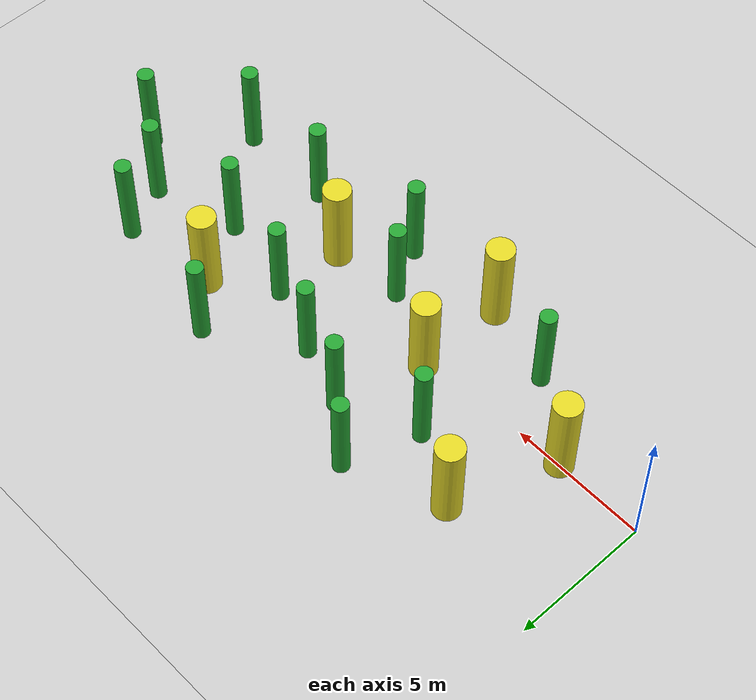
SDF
<sdf version="1.6">
 <world name="default">
  <physics name="default_physics" default="0" type="ode">
   <ode>
    <solver>
     <type>quick</type>
     <iters>150</iters>
     <sor>1.3</sor>
     <use_dynamic_moi_rescaling>0</use_dynamic_moi_rescaling>
    </solver>
    <constraints>
     <cfm>1e-05</cfm>
     <erp>0.2</erp>
     <contact_max_correcting_vel>1000</contact_max_correcting_vel>
     <contact_surface_layer>0.01</contact_surface_layer>
    </constraints>
   </ode>
   <max_step_size>0.004</max_step_size>
   <real_time_factor>1000</real_time_factor>
   <real_time_update_rate>250</real_time_update_rate>
  </physics>
  <light name="sun" type="directional">
   <pose>0 0 10 0 -0 0</pose>
   <diffuse>0.8 0.8 0.8 1</diffuse>
   <specular>0.2 0.2 0.2 1</specular>
   <attenuation>
    <range>1000</range>
    <constant>0.9</constant>
    <linear>0.01</linear>
    <quadratic>0.001</quadratic>
   </attenuation>
   <direction>-0.5 0.1 -0.9</direction>
  </light>
  <model name="ground_plane">
   <static>1</static>
   <link name="link">
    <collision name="collision">
     <geometry><plane><normal>0 0 1</normal><size>100 100</size></plane></geometry>
     <surface><friction><ode><mu>100</mu><mu2>50</mu2></ode></friction></surface>
    </collision>
    <visual name="visual">
     <cast_shadows>0</cast_shadows>
     <geometry><plane><normal>0 0 1</normal><size>100 100</size></plane></geometry>
     <material>
      <script><uri>file://media/materials/scripts/gazebo.material</uri><name>Gazebo/Grey</name></script>
     </material>
    </visual>
    <velocity_decay><linear>0</linear><angular>0</angular></velocity_decay>
   </link>
  </model>
  <model name="pillar_l_1"/>
  <model name="pillar_m_1">
   <pose>0.621778 0.129435 -0.000144 1.6e-05 7e-06 -0.009979</pose>
   <link name="pillar_m::link">
    <inertial>
     <mass>999</mass>
     <inertia><ixx>1</ixx><ixy>0</ixy><ixz>0</ixz><iyy>1</iyy><iyz>0</iyz><izz>1</izz></inertia>
    </inertial>
    <pose>4 3.6 1.75 0 -0 0</pose>
    <visual name="visual">
     <geometry><cylinder><radius>0.5</radius><length>3.5</length></cylinder></geometry>
     <material>
      <script><name>Gazebo/Yellow</name><uri>file://media/materials/scripts/gazebo.material</uri></script>
      <shader type="pixel"><normal_map>__default__</normal_map></shader>
      <ambient>0.988 0.914 0.31 1</ambient>
      <diffuse>0.7 0.7 0.7 1</diffuse>
      <specular>0.01 0.01 0.01 1</specular>
      <emissive>0 0 0 1</emissive>
     </material>
    </visual>
    <collision name="collision">
     <geometry><cylinder><radius>0.5</radius><length>3.5</length></cylinder></geometry>
    </collision>
   </link>
   <static>0</static>
  </model>
  <model name="pillar_m_2">
   <pose>5.36475 1.80821 -1.8e-05 1.6e-05 7e-06 -0.009849</pose>
   <link name="pillar_m::link">
    <inertial>
     <mass>999</mass>
     <inertia><ixx>1</ixx><ixy>0</ixy><ixz>0</ixz><iyy>1</iyy><iyz>0</iyz><izz>1</izz></inertia>
    </inertial>
    <pose>3.6 -4.6 1.75 0 -0 0</pose>
    <visual name="visual">
     <geometry><cylinder><radius>0.5</radius><length>3.5</length></cylinder></geometry>
     <material>
      <script><name>Gazebo/Yellow</name><uri>file://media/materials/scripts/gazebo.material</uri></script>
      <shader type="pixel"><normal_map>__default__</normal_map></shader>
      <ambient>0.988 0.914 0.31 1</ambient>
      <diffuse>0.7 0.7 0.7 1</diffuse>
      <specular>0.01 0.01 0.01 1</specular>
      <emissive>0 0 0 1</emissive>
     </material>
    </visual>
    <collision name="collision">
     <geometry><cylinder><radius>0.5</radius><length>3.5</length></cylinder></geometry>
    </collision>
   </link>
   <static>0</static>
  </model>
  <model name="pillar_m_3">
   <pose>10.9618 -3.55605 -0.000192 1.6e-05 7e-06 -0.009968</pose>
   <link name="pillar_m::link">
    <inertial>
     <mass>999</mass>
     <inertia><ixx>1</ixx><ixy>0</ixy><ixz>0</ixz><iyy>1</iyy><iyz>0</iyz><izz>1</izz></inertia>
    </inertial>
    <pose>-2 4 1.75 0 -0 0</pose>
    <visual name="visual">
     <geometry><cylinder><radius>0.5</radius><length>3.5</length></cylinder></geometry>
     <material>
      <script><name>Gazebo/Yellow</name><uri>file://media/materials/scripts/gazebo.material</uri></script>
      <shader type="pixel"><normal_map>__default__</normal_map></shader>
      <ambient>0.988 0.914 0.31 1</ambient>
      <diffuse>0.7 0.7 0.7 1</diffuse>
      <specular>0.01 0.01 0.01 1</specular>
      <emissive>0 0 0 1</emissive>
     </material>
    </visual>
    <collision name="collision">
     <geometry><cylinder><radius>0.5</radius><length>3.5</length></cylinder></geometry>
    </collision>
   </link>
   <static>0</static>
  </model>
  <model name="pillar_m_4">
   <pose>8.34136 1.91674 -0.000119 1.6e-05 7e-06 -0.009982</pose>
   <link name="pillar_m::link">
    <inertial>
     <mass>999</mass>
     <inertia><ixx>1</ixx><ixy>0</ixy><ixz>0</ixz><iyy>1</iyy><iyz>0</iyz><izz>1</izz></inertia>
    </inertial>
    <pose>-5 -2 1.75 0 -0 0</pose>
    <visual name="visual">
     <geometry><cylinder><radius>0.5</radius><length>3.5</length></cylinder></geometry>
     <material>
      <script><name>Gazebo/Yellow</name><uri>file://media/materials/scripts/gazebo.material</uri></script>
      <shader type="pixel"><normal_map>__default__</normal_map></shader>
      <ambient>0.988 0.914 0.31 1</ambient>
      <diffuse>0.7 0.7 0.7 1</diffuse>
      <specular>0.01 0.01 0.01 1</specular>
      <emissive>0 0 0 1</emissive>
     </material>
    </visual>
    <collision name="collision">
     <geometry><cylinder><radius>0.5</radius><length>3.5</length></cylinder></geometry>
    </collision>
   </link>
   <static>0</static>
  </model>
  <model name="pillar_s_1">
   <pose>12.5409 -0.927887 -0.000171 9e-06 0 -0.098437</pose>
   <link name="pillar_s::link">
    <inertial>
     <mass>999</mass>
     <inertia><ixx>1</ixx><ixy>0</ixy><ixz>0</ixz><iyy>1</iyy><iyz>0</iyz><izz>1</izz></inertia>
    </inertial>
    <pose>2 6 1.75 0 -0 0</pose>
    <visual name="visual">
     <geometry><cylinder><radius>0.3</radius><length>3.5</length></cylinder></geometry>
     <material>
      <script><name>Gazebo/Green</name><uri>file://media/materials/scripts/gazebo.material</uri></script>
      <shader type="pixel"><normal_map>__default__</normal_map></shader>
      <ambient>0 0.914 0 1</ambient>
      <diffuse>0.7 0.7 0.7 1</diffuse>
      <specular>0.01 0.01 0.01 1</specular>
      <emissive>0 0 0 1</emissive>
     </material>
    </visual>
    <collision name="collision">
     <geometry><cylinder><radius>0.25</radius><length>3.5</length></cylinder></geometry>
    </collision>
   </link>
   <static>0</static>
  </model>
  <model name="pillar_s_2">
   <pose>2.19905 -2.94203 -0.000184 9e-06 -1e-06 0.150493</pose>
   <link name="pillar_s::link">
    <inertial>
     <mass>999</mass>
     <inertia><ixx>1</ixx><ixy>0</ixy><ixz>0</ixz><iyy>1</iyy><iyz>0</iyz><izz>1</izz></inertia>
    </inertial>
    <pose>7 7 1.75 0 -0 0</pose>
    <visual name="visual">
     <geometry><cylinder><radius>0.3</radius><length>3.5</length></cylinder></geometry>
     <material>
      <script><name>Gazebo/Green</name><uri>file://media/materials/scripts/gazebo.material</uri></script>
      <shader type="pixel"><normal_map>__default__</normal_map></shader>
      <ambient>0 0.914 0 1</ambient>
      <diffuse>0.7 0.7 0.7 1</diffuse>
      <specular>0.01 0.01 0.01 1</specular>
      <emissive>0 0 0 1</emissive>
     </material>
    </visual>
    <collision name="collision">
     <geometry><cylinder><radius>0.25</radius><length>3.5</length></cylinder></geometry>
    </collision>
   </link>
   <static>0</static>
  </model>
  <model name="pillar_s_3">
   <pose>0.229951 0.577293 -9.9e-05 9e-06 0 -0.098699</pose>
   <link name="pillar_s::link">
    <inertial>
     <mass>999</mass>
     <inertia><ixx>1</ixx><ixy>0</ixy><ixz>0</ixz><iyy>1</iyy><iyz>0</iyz><izz>1</izz></inertia>
    </inertial>
    <pose>6 -2 1.75 0 -0 0</pose>
    <visual name="visual">
     <geometry><cylinder><radius>0.3</radius><length>3.5</length></cylinder></geometry>
     <material>
      <script><name>Gazebo/Green</name><uri>file://media/materials/scripts/gazebo.material</uri></script>
      <shader type="pixel"><normal_map>__default__</normal_map></shader>
      <ambient>0 0.914 0 1</ambient>
      <diffuse>0.7 0.7 0.7 1</diffuse>
      <specular>0.01 0.01 0.01 1</specular>
      <emissive>0 0 0 1</emissive>
     </material>
    </visual>
    <collision name="collision">
     <geometry><cylinder><radius>0.25</radius><length>3.5</length></cylinder></geometry>
    </collision>
   </link>
   <static>0</static>
  </model>
  <model name="pillar_s_4">
   <pose>12.3206 4.20123 -5.5e-05 9e-06 -0 -0.097164</pose>
   <link name="pillar_s::link">
    <inertial>
     <mass>999</mass>
     <inertia><ixx>1</ixx><ixy>0</ixy><ixz>0</ixz><iyy>1</iyy><iyz>0</iyz><izz>1</izz></inertia>
    </inertial>
    <pose>1 -6.8 1.75 0 -0 0</pose>
    <visual name="visual">
     <geometry><cylinder><radius>0.3</radius><length>3.5</length></cylinder></geometry>
     <material>
      <script><name>Gazebo/Green</name><uri>file://media/materials/scripts/gazebo.material</uri></script>
      <shader type="pixel"><normal_map>__default__</normal_map></shader>
      <ambient>0 0.914 0 1</ambient>
      <diffuse>0.7 0.7 0.7 1</diffuse>
      <specular>0.01 0.01 0.01 1</specular>
      <emissive>0 0 0 1</emissive>
     </material>
    </visual>
    <collision name="collision">
     <geometry><cylinder><radius>0.25</radius><length>3.5</length></cylinder></geometry>
    </collision>
   </link>
   <static>0</static>
  </model>
  <model name="pillar_s_5">
   <pose>12.1311 3.04001 -6.9e-05 1.2e-05 1e-06 -0.094594</pose>
   <link name="pillar_s::link">
    <inertial>
     <mass>999</mass>
     <inertia><ixx>1</ixx><ixy>0</ixy><ixz>0</ixz><iyy>1</iyy><iyz>0</iyz><izz>1</izz></inertia>
    </inertial>
    <pose>0 -4 1.75 0 -0 0</pose>
    <visual name="visual">
     <geometry><cylinder><radius>0.3</radius><length>3.5</length></cylinder></geometry>
     <material>
      <script><name>Gazebo/Green</name><uri>file://media/materials/scripts/gazebo.material</uri></script>
      <shader type="pixel"><normal_map>__default__</normal_map></shader>
      <ambient>0 0.914 0 1</ambient>
      <diffuse>0.7 0.7 0.7 1</diffuse>
      <specular>0.01 0.01 0.01 1</specular>
      <emissive>0 0 0 1</emissive>
     </material>
    </visual>
    <collision name="collision">
     <geometry><cylinder><radius>0.25</radius><length>3.5</length></cylinder></geometry>
    </collision>
   </link>
   <static>0</static>
  </model>
  <model name="pillar_s_6">
   <pose>12.4821 9.35307 -6.2e-05 9e-06 0 -0.098303</pose>
   <link name="pillar_s::link">
    <inertial>
     <mass>999</mass>
     <inertia><ixx>1</ixx><ixy>0</ixy><ixz>0</ixz><iyy>1</iyy><iyz>0</iyz><izz>1</izz></inertia>
    </inertial>
    <pose>-2 -6 1.75 0 -0 0</pose>
    <visual name="visual">
     <geometry><cylinder><radius>0.3</radius><length>3.5</length></cylinder></geometry>
     <material>
      <script><name>Gazebo/Green</name><uri>file://media/materials/scripts/gazebo.material</uri></script>
      <shader type="pixel"><normal_map>__default__</normal_map></shader>
      <ambient>0 0.914 0 1</ambient>
      <diffuse>0.7 0.7 0.7 1</diffuse>
      <specular>0.01 0.01 0.01 1</specular>
      <emissive>0 0 0 1</emissive>
     </material>
    </visual>
    <collision name="collision">
     <geometry><cylinder><radius>0.25</radius><length>3.5</length></cylinder></geometry>
    </collision>
   </link>
   <static>0</static>
  </model>
  <model name="pillar_s_7">
   <pose>21.8804 7.81913 -5.6e-05 9e-06 0 -0.093799</pose>
   <link name="pillar_s::link">
    <inertial>
     <mass>999</mass>
     <inertia><ixx>1</ixx><ixy>0</ixy><ixz>0</ixz><iyy>1</iyy><iyz>0</iyz><izz>1</izz></inertia>
    </inertial>
    <pose>-6.8 -6.6 1.75 0 -0 0</pose>
    <visual name="visual">
     <geometry><cylinder><radius>0.3</radius><length>3.5</length></cylinder></geometry>
     <material>
      <script><name>Gazebo/Green</name><uri>file://media/materials/scripts/gazebo.material</uri></script>
      <shader type="pixel"><normal_map>__default__</normal_map></shader>
      <ambient>0 0.914 0 1</ambient>
      <diffuse>0.7 0.7 0.7 1</diffuse>
      <specular>0.01 0.01 0.01 1</specular>
      <emissive>0 0 0 1</emissive>
     </material>
    </visual>
    <collision name="collision">
     <geometry><cylinder><radius>0.25</radius><length>3.5</length></cylinder></geometry>
    </collision>
   </link>
   <static>0</static>
  </model>
  <model name="pillar_s_8">
   <pose>16.8724 0.331694 -0.000135 9e-06 -0 -0.096882</pose>
   <link name="pillar_s::link">
    <inertial>
     <mass>999</mass>
     <inertia><ixx>1</ixx><ixy>0</ixy><ixz>0</ixz><iyy>1</iyy><iyz>0</iyz><izz>1</izz></inertia>
    </inertial>
    <pose>-5 2 1.75 0 -0 0</pose>
    <visual name="visual">
     <geometry><cylinder><radius>0.3</radius><length>3.5</length></cylinder></geometry>
     <material>
      <script><name>Gazebo/Green</name><uri>file://media/materials/scripts/gazebo.material</uri></script>
      <shader type="pixel"><normal_map>__default__</normal_map></shader>
      <ambient>0 0.914 0 1</ambient>
      <diffuse>0.7 0.7 0.7 1</diffuse>
      <specular>0.01 0.01 0.01 1</specular>
      <emissive>0 0 0 1</emissive>
     </material>
    </visual>
    <collision name="collision">
     <geometry><cylinder><radius>0.25</radius><length>3.5</length></cylinder></geometry>
    </collision>
   </link>
   <static>0</static>
  </model>
  <model name="pillar_s_9">
   <pose>11.5126 -4.08732 -0.000171 9e-06 0 -0.098699</pose>
   <link name="pillar_s::link">
    <inertial>
     <mass>999</mass>
     <inertia><ixx>1</ixx><ixy>0</ixy><ixz>0</ixz><iyy>1</iyy><iyz>0</iyz><izz>1</izz></inertia>
    </inertial>
    <pose>-5 6 1.75 0 -0 0</pose>
    <visual name="visual">
     <geometry><cylinder><radius>0.3</radius><length>3.5</length></cylinder></geometry>
     <material>
      <script><name>Gazebo/Green</name><uri>file://media/materials/scripts/gazebo.material</uri></script>
      <shader type="pixel"><normal_map>__default__</normal_map></shader>
      <ambient>0 0.914 0 1</ambient>
      <diffuse>0.7 0.7 0.7 1</diffuse>
      <specular>0.01 0.01 0.01 1</specular>
      <emissive>0 0 0 1</emissive>
     </material>
    </visual>
    <collision name="collision">
     <geometry><cylinder><radius>0.25</radius><length>3.5</length></cylinder></geometry>
    </collision>
   </link>
   <static>0</static>
  </model>
  <gravity>0 0 -9.8066</gravity>
  <magnetic_field>6e-06 2.3e-05 -4.2e-05</magnetic_field>
  <atmosphere type="adiabatic"/>
  <scene><ambient>0.4 0.4 0.4 1</ambient><background>0.7 0.7 0.7 1</background><shadows>1</shadows></scene>
  <spherical_coordinates>
   <surface_model>EARTH_WGS84</surface_model>
   <latitude_deg>0</latitude_deg>
   <longitude_deg>0</longitude_deg>
   <elevation>0</elevation>
   <heading_deg>0</heading_deg>
  </spherical_coordinates>
  <model name="pillar_m_3_clone">
   <link name="pillar_m::link">
    <inertial>
     <mass>999</mass>
     <inertia><ixx>1</ixx><ixy>0</ixy><ixz>0</ixz><iyy>1</iyy><iyz>0</iyz><izz>1</izz></inertia>
    </inertial>
    <pose>-2 4 1.75 0 -0 0</pose>
    <visual name="visual">
     <geometry><cylinder><radius>0.5</radius><length>3.5</length></cylinder></geometry>
     <material>
      <script><name>Gazebo/Yellow</name><uri>file://media/materials/scripts/gazebo.material</uri></script>
      <shader type="pixel"><normal_map>__default__</normal_map></shader>
      <ambient>0.988 0.914 0.31 1</ambient>
      <diffuse>0.7 0.7 0.7 1</diffuse>
      <specular>0.01 0.01 0.01 1</specular>
      <emissive>0 0 0 1</emissive>
     </material>
    </visual>
    <collision name="collision">
     <geometry><cylinder><radius>0.5</radius><length>3.5</length></cylinder></geometry>
    </collision>
   </link>
   <static>0</static>
   <pose>18.508 -0.666803 -0.000192 1.6e-05 7e-06 -0.009965</pose>
  </model>
  <model name="pillar_m_3_clone_0">
   <link name="pillar_m::link">
    <inertial>
     <mass>999</mass>
     <inertia><ixx>1</ixx><ixy>0</ixy><ixz>0</ixz><iyy>1</iyy><iyz>0</iyz><izz>1</izz></inertia>
    </inertial>
    <pose>-2 4 1.75 0 -0 0</pose>
    <visual name="visual">
     <geometry><cylinder><radius>0.5</radius><length>3.5</length></cylinder></geometry>
     <material>
      <script><name>Gazebo/Yellow</name><uri>file://media/materials/scripts/gazebo.material</uri></script>
      <shader type="pixel"><normal_map>__default__</normal_map></shader>
      <ambient>0.988 0.914 0.31 1</ambient>
      <diffuse>0.7 0.7 0.7 1</diffuse>
      <specular>0.01 0.01 0.01 1</specular>
      <emissive>0 0 0 1</emissive>
     </material>
    </visual>
    <collision name="collision">
     <geometry><cylinder><radius>0.5</radius><length>3.5</length></cylinder></geometry>
    </collision>
   </link>
   <static>0</static>
   <pose>16.3239 -4.68358 -0.000192 1.6e-05 7e-06 -0.009704</pose>
  </model>
  <model name="pillar_s_4_clone">
   <link name="pillar_s::link">
    <inertial>
     <mass>999</mass>
     <inertia><ixx>1</ixx><ixy>0</ixy><ixz>0</ixz><iyy>1</iyy><iyz>0</iyz><izz>1</izz></inertia>
    </inertial>
    <pose>1 -6.8 1.75 0 -0 0</pose>
    <visual name="visual">
     <geometry><cylinder><radius>0.3</radius><length>3.5</length></cylinder></geometry>
     <material>
      <script><name>Gazebo/Green</name><uri>file://media/materials/scripts/gazebo.material</uri></script>
      <shader type="pixel"><normal_map>__default__</normal_map></shader>
      <ambient>0 0.914 0 1</ambient>
      <diffuse>0.7 0.7 0.7 1</diffuse>
      <specular>0.01 0.01 0.01 1</specular>
      <emissive>0 0 0 1</emissive>
     </material>
    </visual>
    <collision name="collision">
     <geometry><cylinder><radius>0.25</radius><length>3.5</length></cylinder></geometry>
    </collision>
   </link>
   <static>0</static>
   <pose>15.5202 4.78098 -5.5e-05 9e-06 -0 0.034973</pose>
  </model>
  <model name="pillar_s_4_clone_0">
   <link name="pillar_s::link">
    <inertial>
     <mass>999</mass>
     <inertia><ixx>1</ixx><ixy>0</ixy><ixz>0</ixz><iyy>1</iyy><iyz>0</iyz><izz>1</izz></inertia>
    </inertial>
    <pose>1 -6.8 1.75 0 -0 0</pose>
    <visual name="visual">
     <geometry><cylinder><radius>0.3</radius><length>3.5</length></cylinder></geometry>
     <material>
      <script><name>Gazebo/Green</name><uri>file://media/materials/scripts/gazebo.material</uri></script>
      <shader type="pixel"><normal_map>__default__</normal_map></shader>
      <ambient>0 0.914 0 1</ambient>
      <diffuse>0.7 0.7 0.7 1</diffuse>
      <specular>0.01 0.01 0.01 1</specular>
      <emissive>0 0 0 1</emissive>
     </material>
    </visual>
    <collision name="collision">
     <geometry><cylinder><radius>0.25</radius><length>3.5</length></cylinder></geometry>
    </collision>
   </link>
   <static>0</static>
   <pose>17.3249 8.02098 -5.5e-05 9e-06 -0 -0.095327</pose>
  </model>
  <model name="pillar_s_4_clone_1">
   <link name="pillar_s::link">
    <inertial>
     <mass>999</mass>
     <inertia><ixx>1</ixx><ixy>0</ixy><ixz>0</ixz><iyy>1</iyy><iyz>0</iyz><izz>1</izz></inertia>
    </inertial>
    <pose>1 -6.8 1.75 0 -0 0</pose>
    <visual name="visual">
     <geometry><cylinder><radius>0.3</radius><length>3.5</length></cylinder></geometry>
     <material>
      <script><name>Gazebo/Green</name><uri>file://media/materials/scripts/gazebo.material</uri></script>
      <shader type="pixel"><normal_map>__default__</normal_map></shader>
      <ambient>0 0.914 0 1</ambient>
      <diffuse>0.7 0.7 0.7 1</diffuse>
      <specular>0.01 0.01 0.01 1</specular>
      <emissive>0 0 0 1</emissive>
     </material>
    </visual>
    <collision name="collision">
     <geometry><cylinder><radius>0.25</radius><length>3.5</length></cylinder></geometry>
    </collision>
   </link>
   <static>0</static>
   <pose>19.6882 10.7103 -5.5e-05 9e-06 -0 -0.098204</pose>
  </model>
  <model name="pillar_s_4_clone_2">
   <link name="pillar_s::link">
    <inertial>
     <mass>999</mass>
     <inertia><ixx>1</ixx><ixy>0</ixy><ixz>0</ixz><iyy>1</iyy><iyz>0</iyz><izz>1</izz></inertia>
    </inertial>
    <pose>1 -6.8 1.75 0 -0 0</pose>
    <visual name="visual">
     <geometry><cylinder><radius>0.3</radius><length>3.5</length></cylinder></geometry>
     <material>
      <script><name>Gazebo/Green</name><uri>file://media/materials/scripts/gazebo.material</uri></script>
      <shader type="pixel"><normal_map>__default__</normal_map></shader>
      <ambient>0 0.914 0 1</ambient>
      <diffuse>0.7 0.7 0.7 1</diffuse>
      <specular>0.01 0.01 0.01 1</specular>
      <emissive>0 0 0 1</emissive>
     </material>
    </visual>
    <collision name="collision">
     <geometry><cylinder><radius>0.25</radius><length>3.5</length></cylinder></geometry>
    </collision>
   </link>
   <static>0</static>
   <pose>19.7324 8.81305 -5.5e-05 9e-06 1e-06 0.008144</pose>
  </model>
  <model name="pillar_s_4_clone_3">
   <link name="pillar_s::link">
    <inertial>
     <mass>999</mass>
     <inertia><ixx>1</ixx><ixy>0</ixy><ixz>0</ixz><iyy>1</iyy><iyz>0</iyz><izz>1</izz></inertia>
    </inertial>
    <pose>1 -6.8 1.75 0 -0 0</pose>
    <visual name="visual">
     <geometry><cylinder><radius>0.3</radius><length>3.5</length></cylinder></geometry>
     <material>
      <script><name>Gazebo/Green</name><uri>file://media/materials/scripts/gazebo.material</uri></script>
      <shader type="pixel"><normal_map>__default__</normal_map></shader>
      <ambient>0 0.914 0 1</ambient>
      <diffuse>0.7 0.7 0.7 1</diffuse>
      <specular>0.01 0.01 0.01 1</specular>
      <emissive>0 0 0 1</emissive>
     </material>
    </visual>
    <collision name="collision">
     <geometry><cylinder><radius>0.25</radius><length>3.5</length></cylinder></geometry>
    </collision>
   </link>
   <static>0</static>
   <pose>19.2622 4.75426 -5.5e-05 9e-06 1e-06 0.00684</pose>
  </model>
  <model name="pillar_s_4_clone_4">
   <link name="pillar_s::link">
    <inertial>
     <mass>999</mass>
     <inertia><ixx>1</ixx><ixy>0</ixy><ixz>0</ixz><iyy>1</iyy><iyz>0</iyz><izz>1</izz></inertia>
    </inertial>
    <pose>1 -6.8 1.75 0 -0 0</pose>
    <visual name="visual">
     <geometry><cylinder><radius>0.3</radius><length>3.5</length></cylinder></geometry>
     <material>
      <script><name>Gazebo/Green</name><uri>file://media/materials/scripts/gazebo.material</uri></script>
      <shader type="pixel"><normal_map>__default__</normal_map></shader>
      <ambient>0 0.914 0 1</ambient>
      <diffuse>0.7 0.7 0.7 1</diffuse>
      <specular>0.01 0.01 0.01 1</specular>
      <emissive>0 0 0 1</emissive>
     </material>
    </visual>
    <collision name="collision">
     <geometry><cylinder><radius>0.25</radius><length>3.5</length></cylinder></geometry>
    </collision>
   </link>
   <static>0</static>
   <pose>21.6605 7.42558 -5.5e-05 9e-06 1e-06 0.008108</pose>
  </model>
 </world>
</sdf>
